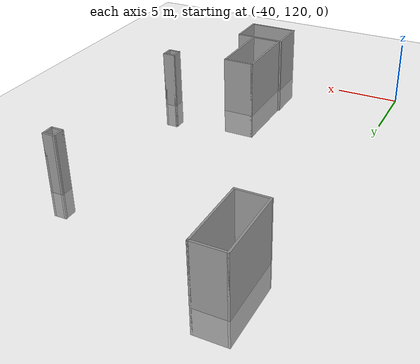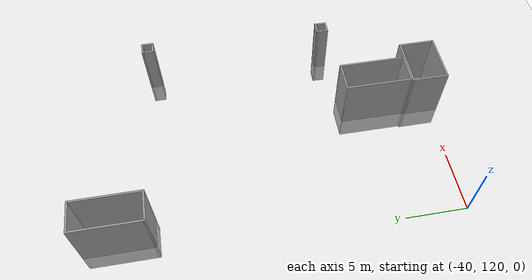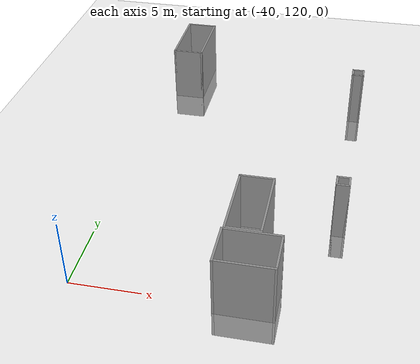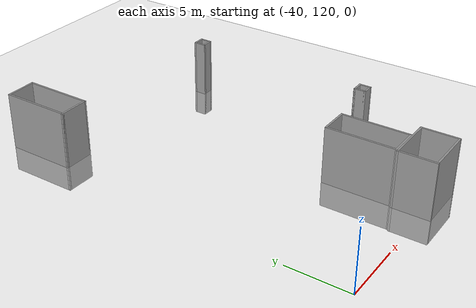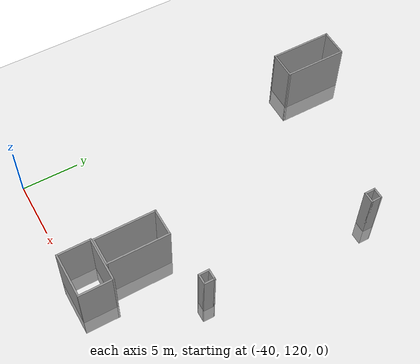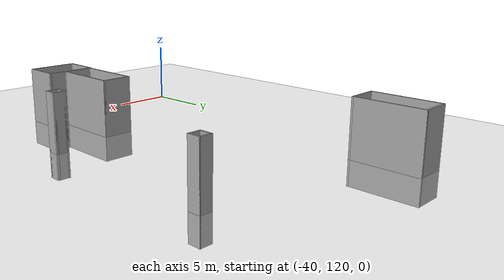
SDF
<sdf version="1.6">
 <world name="default">
  <model name="ground_plane">
   <static>1</static>
   <link name="link">
    <collision name="collision">
     <geometry><plane><normal>0 0 1</normal><size>320 320</size></plane></geometry>
     <surface>
      <contact><collide_bitmask>65535</collide_bitmask></contact>
      <friction><ode><mu>100</mu><mu2>50</mu2></ode></friction>
     </surface>
    </collision>
    <visual name="visual">
     <cast_shadows>0</cast_shadows>
     <geometry><plane><normal>0 0 1</normal><size>320 320</size></plane></geometry>
     <material>
      <script><uri>file://media/materials/scripts/gazebo.material</uri><name>Gazebo/Grey</name></script>
     </material>
    </visual>
   </link>
  </model>
  <model name="box_1mx1m_4">
   <pose>-23.0064 143.324 0 0 -0 0</pose>
   <link name="Wall_10">
    <collision name="Wall_10_Collision">
     <geometry><box><size>1 0.15 6.555</size></box></geometry>
     <pose>0 0 1.25 0 -0 0</pose>
    </collision>
    <visual name="Wall_10_Visual">
     <pose>0 0 1.25 0 -0 0</pose>
     <geometry><box><size>1 0.15 6.555</size></box></geometry>
     <material>
      <script><uri>file://media/materials/scripts/gazebo.material</uri><name>Gazebo/Grey</name></script>
      <ambient>1 1 1 1</ambient>
     </material>
     <meta><layer>0</layer></meta>
    </visual>
    <pose>-0.425 0 0 0 -0 -1.5708</pose>
   </link>
   <link name="Wall_11">
    <collision name="Wall_11_Collision">
     <geometry><box><size>1 0.15 6.555</size></box></geometry>
     <pose>0 0 1.25 0 -0 0</pose>
    </collision>
    <visual name="Wall_11_Visual">
     <pose>0 0 1.25 0 -0 0</pose>
     <geometry><box><size>1 0.15 6.555</size></box></geometry>
     <material>
      <script><uri>file://media/materials/scripts/gazebo.material</uri><name>Gazebo/Grey</name></script>
      <ambient>1 1 1 1</ambient>
     </material>
     <meta><layer>0</layer></meta>
    </visual>
    <pose>0 -0.425 0 0 -0 0</pose>
   </link>
   <link name="Wall_12">
    <collision name="Wall_12_Collision">
     <geometry><box><size>1 0.15 6.555</size></box></geometry>
     <pose>0 0 1.25 0 -0 0</pose>
    </collision>
    <visual name="Wall_12_Visual">
     <pose>0 0 1.25 0 -0 0</pose>
     <geometry><box><size>1 0.15 6.555</size></box></geometry>
     <material>
      <script><uri>file://media/materials/scripts/gazebo.material</uri><name>Gazebo/Grey</name></script>
      <ambient>1 1 1 1</ambient>
     </material>
     <meta><layer>0</layer></meta>
    </visual>
    <pose>0.425 0 0 0 -0 1.5708</pose>
   </link>
   <link name="Wall_13">
    <collision name="Wall_13_Collision">
     <geometry><box><size>1 0.15 6.555</size></box></geometry>
     <pose>0 0 1.25 0 -0 0</pose>
    </collision>
    <visual name="Wall_13_Visual">
     <pose>0 0 1.25 0 -0 0</pose>
     <geometry><box><size>1 0.15 6.555</size></box></geometry>
     <material>
      <script><uri>file://media/materials/scripts/gazebo.material</uri><name>Gazebo/Grey</name></script>
      <ambient>1 1 1 1</ambient>
     </material>
     <meta><layer>0</layer></meta>
    </visual>
    <pose>0 0.425 0 0 -0 3.14159</pose>
   </link>
   <static>1</static>
  </model>
  <model name="box_1mx1m_11">
   <pose>-23.1332 128.355 0 0 -0 0</pose>
   <link name="Wall_10">
    <collision name="Wall_10_Collision">
     <geometry><box><size>1 0.15 6.555</size></box></geometry>
     <pose>0 0 1.25 0 -0 0</pose>
    </collision>
    <visual name="Wall_10_Visual">
     <pose>0 0 1.25 0 -0 0</pose>
     <geometry><box><size>1 0.15 6.555</size></box></geometry>
     <material>
      <script><uri>file://media/materials/scripts/gazebo.material</uri><name>Gazebo/Grey</name></script>
      <ambient>1 1 1 1</ambient>
     </material>
     <meta><layer>0</layer></meta>
    </visual>
    <pose>-0.425 0 0 0 -0 -1.5708</pose>
   </link>
   <link name="Wall_11">
    <collision name="Wall_11_Collision">
     <geometry><box><size>1 0.15 6.555</size></box></geometry>
     <pose>0 0 1.25 0 -0 0</pose>
    </collision>
    <visual name="Wall_11_Visual">
     <pose>0 0 1.25 0 -0 0</pose>
     <geometry><box><size>1 0.15 6.555</size></box></geometry>
     <material>
      <script><uri>file://media/materials/scripts/gazebo.material</uri><name>Gazebo/Grey</name></script>
      <ambient>1 1 1 1</ambient>
     </material>
     <meta><layer>0</layer></meta>
    </visual>
    <pose>0 -0.425 0 0 -0 0</pose>
   </link>
   <link name="Wall_12">
    <collision name="Wall_12_Collision">
     <geometry><box><size>1 0.15 6.555</size></box></geometry>
     <pose>0 0 1.25 0 -0 0</pose>
    </collision>
    <visual name="Wall_12_Visual">
     <pose>0 0 1.25 0 -0 0</pose>
     <geometry><box><size>1 0.15 6.555</size></box></geometry>
     <material>
      <script><uri>file://media/materials/scripts/gazebo.material</uri><name>Gazebo/Grey</name></script>
      <ambient>1 1 1 1</ambient>
     </material>
     <meta><layer>0</layer></meta>
    </visual>
    <pose>0.425 0 0 0 -0 1.5708</pose>
   </link>
   <link name="Wall_13">
    <collision name="Wall_13_Collision">
     <geometry><box><size>1 0.15 6.555</size></box></geometry>
     <pose>0 0 1.25 0 -0 0</pose>
    </collision>
    <visual name="Wall_13_Visual">
     <pose>0 0 1.25 0 -0 0</pose>
     <geometry><box><size>1 0.15 6.555</size></box></geometry>
     <material>
      <script><uri>file://media/materials/scripts/gazebo.material</uri><name>Gazebo/Grey</name></script>
      <ambient>1 1 1 1</ambient>
     </material>
     <meta><layer>0</layer></meta>
    </visual>
    <pose>0 0.425 0 0 -0 3.14159</pose>
   </link>
   <static>1</static>
  </model>
  <model name="car5.5x2.5">
   <pose>-28.8903 125.017 0 0 -0 0</pose>
   <link name="Wall_5">
    <collision name="Wall_5_Collision">
     <geometry><box><size>5.5 0.15 6.555</size></box></geometry>
     <pose>0 0 1.25 0 -0 0</pose>
    </collision>
    <visual name="Wall_5_Visual">
     <pose>0 0 1.25 0 -0 0</pose>
     <geometry><box><size>5.5 0.15 6.555</size></box></geometry>
     <material>
      <script><uri>file://media/materials/scripts/gazebo.material</uri><name>Gazebo/Grey</name></script>
      <ambient>1 1 1 1</ambient>
     </material>
     <meta><layer>0</layer></meta>
    </visual>
    <pose>-1.175 0 0 0 -0 1.5708</pose>
   </link>
   <link name="Wall_6">
    <collision name="Wall_6_Collision">
     <geometry><box><size>2.5 0.15 6.555</size></box></geometry>
     <pose>0 0 1.25 0 -0 0</pose>
    </collision>
    <visual name="Wall_6_Visual">
     <pose>0 0 1.25 0 -0 0</pose>
     <geometry><box><size>2.5 0.15 6.555</size></box></geometry>
     <material>
      <script><uri>file://media/materials/scripts/gazebo.material</uri><name>Gazebo/Grey</name></script>
      <ambient>1 1 1 1</ambient>
     </material>
     <meta><layer>0</layer></meta>
    </visual>
    <pose>0 2.675 0 0 -0 0</pose>
   </link>
   <link name="Wall_7">
    <collision name="Wall_7_Collision">
     <geometry><box><size>5.5 0.15 6.555</size></box></geometry>
     <pose>0 0 1.25 0 -0 0</pose>
    </collision>
    <visual name="Wall_7_Visual">
     <pose>0 0 1.25 0 -0 0</pose>
     <geometry><box><size>5.5 0.15 6.555</size></box></geometry>
     <material>
      <script><uri>file://media/materials/scripts/gazebo.material</uri><name>Gazebo/Grey</name></script>
      <ambient>1 1 1 1</ambient>
     </material>
     <meta><layer>0</layer></meta>
    </visual>
    <pose>1.175 0 0 0 -0 -1.5708</pose>
   </link>
   <link name="Wall_8">
    <collision name="Wall_8_Collision">
     <geometry><box><size>2.5 0.15 6.555</size></box></geometry>
     <pose>0 0 1.25 0 -0 0</pose>
    </collision>
    <visual name="Wall_8_Visual">
     <pose>0 0 1.25 0 -0 0</pose>
     <geometry><box><size>2.5 0.15 6.555</size></box></geometry>
     <material>
      <script><uri>file://media/materials/scripts/gazebo.material</uri><name>Gazebo/Grey</name></script>
      <ambient>1 1 1 1</ambient>
     </material>
     <meta><layer>0</layer></meta>
    </visual>
    <pose>0 -2.675 0 0 -0 3.14159</pose>
   </link>
   <static>1</static>
  </model>
  <model name="base3x4">
   <pose>-28.2587 120.781 0 0 -0 0</pose>
   <link name="Wall_18">
    <collision name="Wall_18_Collision">
     <geometry><box><size>3 0.15 6.555</size></box></geometry>
     <pose>0 0 1.25 0 -0 0</pose>
    </collision>
    <visual name="Wall_18_Visual">
     <pose>0 0 1.25 0 -0 0</pose>
     <geometry><box><size>3 0.15 6.555</size></box></geometry>
     <material>
      <script><uri>file://media/materials/scripts/gazebo.material</uri><name>Gazebo/Grey</name></script>
      <ambient>1 1 1 1</ambient>
     </material>
     <meta><layer>0</layer></meta>
    </visual>
    <pose>-1.925 -0 0 0 -0 -1.5708</pose>
   </link>
   <link name="Wall_19">
    <collision name="Wall_19_Collision">
     <geometry><box><size>4 0.15 6.555</size></box></geometry>
     <pose>0 0 1.25 0 -0 0</pose>
    </collision>
    <visual name="Wall_19_Visual">
     <pose>0 0 1.25 0 -0 0</pose>
     <geometry><box><size>4 0.15 6.555</size></box></geometry>
     <material>
      <script><uri>file://media/materials/scripts/gazebo.material</uri><name>Gazebo/Grey</name></script>
      <ambient>1 1 1 1</ambient>
     </material>
     <meta><layer>0</layer></meta>
    </visual>
    <pose>-0 -1.425 0 0 -0 0</pose>
   </link>
   <link name="Wall_20">
    <collision name="Wall_20_Collision">
     <geometry><box><size>3 0.15 6.555</size></box></geometry>
     <pose>0 0 1.25 0 -0 0</pose>
    </collision>
    <visual name="Wall_20_Visual">
     <pose>0 0 1.25 0 -0 0</pose>
     <geometry><box><size>3 0.15 6.555</size></box></geometry>
     <material>
      <script><uri>file://media/materials/scripts/gazebo.material</uri><name>Gazebo/Grey</name></script>
      <ambient>1 1 1 1</ambient>
     </material>
     <meta><layer>0</layer></meta>
    </visual>
    <pose>1.925 -0 0 0 -0 1.5708</pose>
   </link>
   <link name="Wall_21">
    <collision name="Wall_21_Collision">
     <geometry><box><size>4 0.15 6.555</size></box></geometry>
     <pose>0 0 1.25 0 -0 0</pose>
    </collision>
    <visual name="Wall_21_Visual">
     <pose>0 0 1.25 0 -0 0</pose>
     <geometry><box><size>4 0.15 6.555</size></box></geometry>
     <material>
      <script><uri>file://media/materials/scripts/gazebo.material</uri><name>Gazebo/Grey</name></script>
      <ambient>1 1 1 1</ambient>
     </material>
     <meta><layer>0</layer></meta>
    </visual>
    <pose>-0 1.425 0 0 -0 3.14159</pose>
   </link>
   <static>1</static>
  </model>
  <model name="car5.5x2.5_clone">
   <pose>-37.8336 146.927 0 0 -0 0</pose>
   <link name="Wall_5">
    <collision name="Wall_5_Collision">
     <geometry><box><size>5.5 0.15 6.555</size></box></geometry>
     <pose>0 0 1.25 0 -0 0</pose>
    </collision>
    <visual name="Wall_5_Visual">
     <pose>0 0 1.25 0 -0 0</pose>
     <geometry><box><size>5.5 0.15 6.555</size></box></geometry>
     <material>
      <script><uri>file://media/materials/scripts/gazebo.material</uri><name>Gazebo/Grey</name></script>
      <ambient>1 1 1 1</ambient>
     </material>
     <meta><layer>0</layer></meta>
    </visual>
    <pose>-1.175 0 0 0 -0 1.5708</pose>
   </link>
   <link name="Wall_6">
    <collision name="Wall_6_Collision">
     <geometry><box><size>2.5 0.15 6.555</size></box></geometry>
     <pose>0 0 1.25 0 -0 0</pose>
    </collision>
    <visual name="Wall_6_Visual">
     <pose>0 0 1.25 0 -0 0</pose>
     <geometry><box><size>2.5 0.15 6.555</size></box></geometry>
     <material>
      <script><uri>file://media/materials/scripts/gazebo.material</uri><name>Gazebo/Grey</name></script>
      <ambient>1 1 1 1</ambient>
     </material>
     <meta><layer>0</layer></meta>
    </visual>
    <pose>0 2.675 0 0 -0 0</pose>
   </link>
   <link name="Wall_7">
    <collision name="Wall_7_Collision">
     <geometry><box><size>5.5 0.15 6.555</size></box></geometry>
     <pose>0 0 1.25 0 -0 0</pose>
    </collision>
    <visual name="Wall_7_Visual">
     <pose>0 0 1.25 0 -0 0</pose>
     <geometry><box><size>5.5 0.15 6.555</size></box></geometry>
     <material>
      <script><uri>file://media/materials/scripts/gazebo.material</uri><name>Gazebo/Grey</name></script>
      <ambient>1 1 1 1</ambient>
     </material>
     <meta><layer>0</layer></meta>
    </visual>
    <pose>1.175 0 0 0 -0 -1.5708</pose>
   </link>
   <link name="Wall_8">
    <collision name="Wall_8_Collision">
     <geometry><box><size>2.5 0.15 6.555</size></box></geometry>
     <pose>0 0 1.25 0 -0 0</pose>
    </collision>
    <visual name="Wall_8_Visual">
     <pose>0 0 1.25 0 -0 0</pose>
     <geometry><box><size>2.5 0.15 6.555</size></box></geometry>
     <material>
      <script><uri>file://media/materials/scripts/gazebo.material</uri><name>Gazebo/Grey</name></script>
      <ambient>1 1 1 1</ambient>
     </material>
     <meta><layer>0</layer></meta>
    </visual>
    <pose>0 -2.675 0 0 -0 3.14159</pose>
   </link>
   <static>1</static>
  </model>
 </world>
</sdf>
